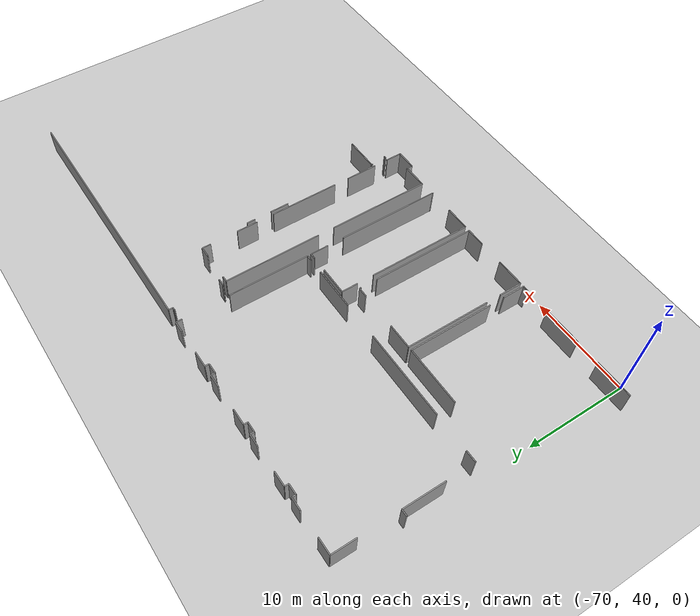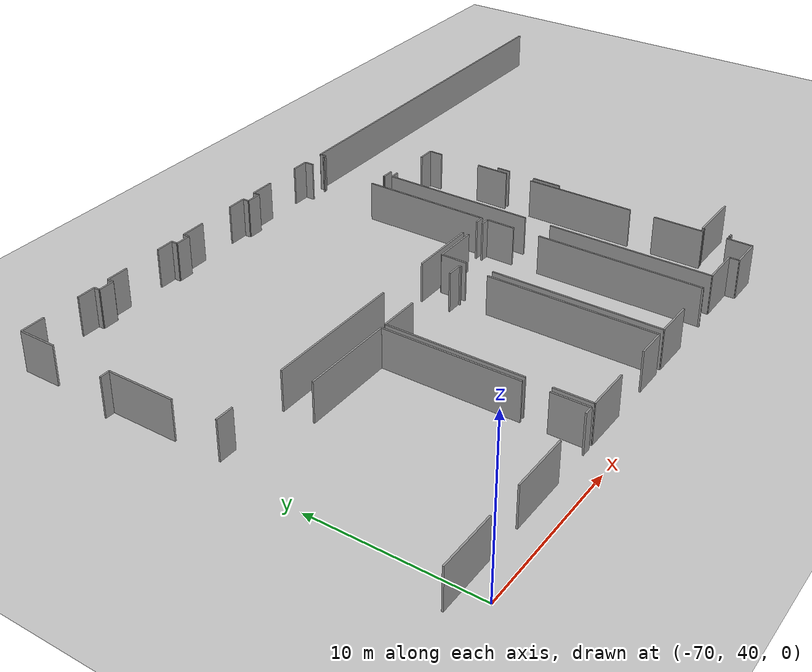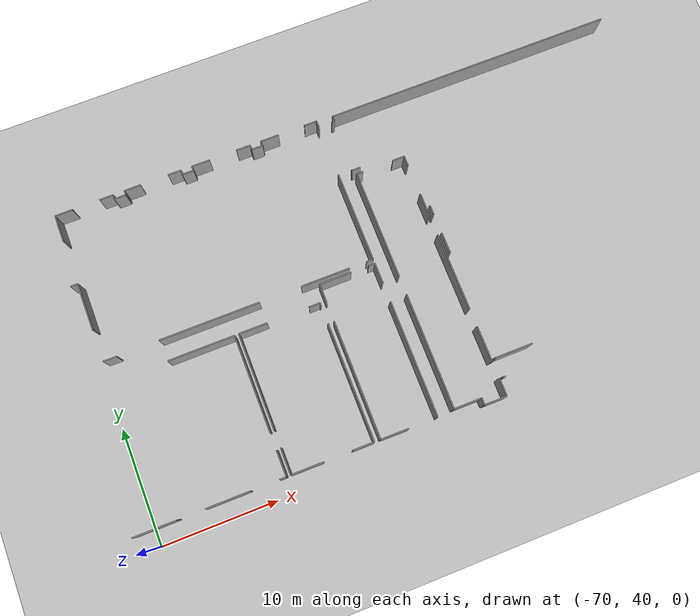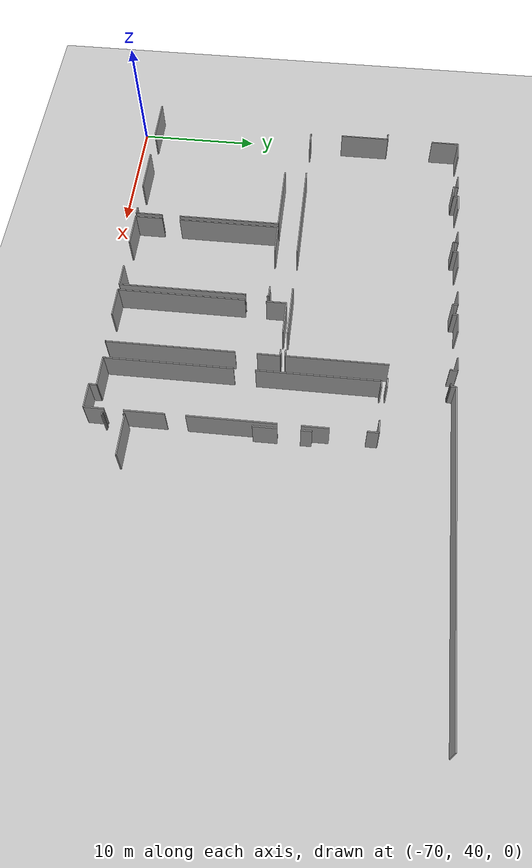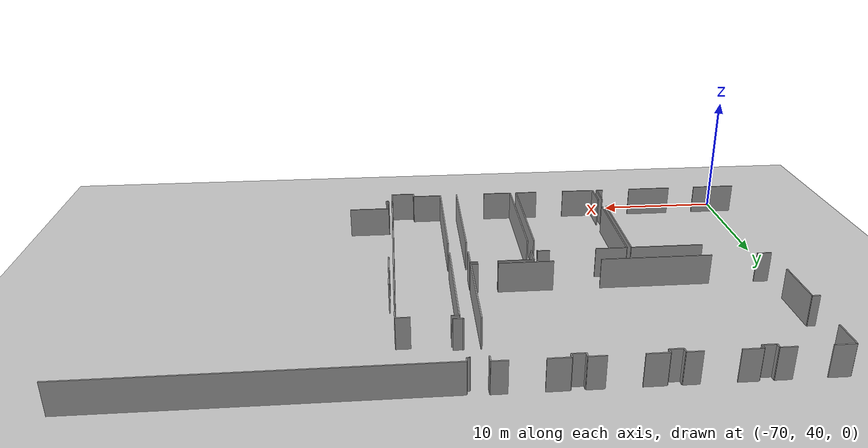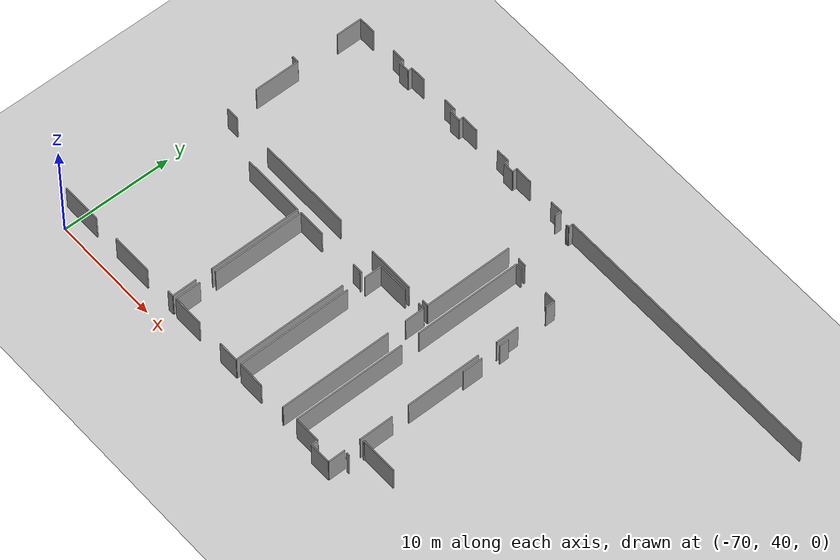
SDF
<sdf version="1.6">
 <world name="default">
  <model name="ground_plane">
   <static>1</static>
   <link name="link">
    <collision name="collision">
     <geometry><plane><normal>0 0 1</normal><size>100 100</size></plane></geometry>
     <surface><friction><ode><mu>100</mu><mu2>50</mu2></ode></friction></surface>
    </collision>
    <visual name="visual">
     <cast_shadows>0</cast_shadows>
     <geometry><plane><normal>0 0 1</normal><size>100 100</size></plane></geometry>
     <material>
      <script><uri>file://media/materials/scripts/gazebo.material</uri><name>Gazebo/Grey</name></script>
     </material>
    </visual>
   </link>
  </model>
  <model name="0510035519_A_40_1_102">
   <static>1</static>
   <link name="Wall_30">
    <collision name="Wall_30_Collision">
     <geometry><box><size>2.35582666158 0.1 2.5</size></box></geometry>
     <pose>1.17791333079 0 1.25 0 0 0</pose>
    </collision>
    <visual name="Wall_30_Visual">
     <pose>1.17791333079 0 1.25 0 0 0</pose>
     <geometry><box><size>2.35582666158 0.1 2.5</size></box></geometry>
     <material>
      <script><uri>file://media/materials/scripts/gazebo.material</uri><name>Gazebo/Grey</name></script>
      <ambient>1 1 1 1</ambient>
     </material>
    </visual>
    <pose>47.2703011819 -2.36294319482 0 0 0 1.57079632679</pose>
   </link>
   <link name="Wall_31">
    <collision name="Wall_31_Collision">
     <geometry><box><size>1.5511500826 0.1 2.5</size></box></geometry>
     <pose>0.775575041301 0 1.25 0 0 0</pose>
    </collision>
    <visual name="Wall_31_Visual">
     <pose>0.775575041301 0 1.25 0 0 0</pose>
     <geometry><box><size>1.5511500826 0.1 2.5</size></box></geometry>
     <material>
      <script><uri>file://media/materials/scripts/gazebo.material</uri><name>Gazebo/Grey</name></script>
      <ambient>1 1 1 1</ambient>
     </material>
    </visual>
    <pose>47.2703011819 -0.00711653323167 0 0 0 0.0</pose>
   </link>
   <link name="Wall_32">
    <collision name="Wall_32_Collision">
     <geometry><box><size>1.20396492566 0.1 2.5</size></box></geometry>
     <pose>0.601982462829 0 1.25 0 0 0</pose>
    </collision>
    <visual name="Wall_32_Visual">
     <pose>0.601982462829 0 1.25 0 0 0</pose>
     <geometry><box><size>1.20396492566 0.1 2.5</size></box></geometry>
     <material>
      <script><uri>file://media/materials/scripts/gazebo.material</uri><name>Gazebo/Grey</name></script>
      <ambient>1 1 1 1</ambient>
     </material>
    </visual>
    <pose>51.2197229635 -0.00711653323167 0 0 0 0.0</pose>
   </link>
   <link name="Wall_33">
    <collision name="Wall_33_Collision">
     <geometry><box><size>0.383530308807 0.1 2.5</size></box></geometry>
     <pose>0.191765154403 0 1.25 0 0 0</pose>
    </collision>
    <visual name="Wall_33_Visual">
     <pose>0.191765154403 0 1.25 0 0 0</pose>
     <geometry><box><size>0.383530308807 0.1 2.5</size></box></geometry>
     <material>
      <script><uri>file://media/materials/scripts/gazebo.material</uri><name>Gazebo/Grey</name></script>
      <ambient>1 1 1 1</ambient>
     </material>
    </visual>
    <pose>52.4236878892 -0.00711653323167 0 0 0 -1.57079632679</pose>
   </link>
   <link name="Wall_34">
    <collision name="Wall_34_Collision">
     <geometry><box><size>1.01359766171 0.1 2.5</size></box></geometry>
     <pose>0.506798830855 0 1.25 0 0 0</pose>
    </collision>
    <visual name="Wall_34_Visual">
     <pose>0.506798830855 0 1.25 0 0 0</pose>
     <geometry><box><size>1.01359766171 0.1 2.5</size></box></geometry>
     <material>
      <script><uri>file://media/materials/scripts/gazebo.material</uri><name>Gazebo/Grey</name></script>
      <ambient>1 1 1 1</ambient>
     </material>
    </visual>
    <pose>52.4236878892 -0.390646842038 0 0 0 0.0</pose>
   </link>
   <link name="Wall_35">
    <collision name="Wall_35_Collision">
     <geometry><box><size>0.390646842038 0.1 2.5</size></box></geometry>
     <pose>0.195323421019 0 1.25 0 0 0</pose>
    </collision>
    <visual name="Wall_35_Visual">
     <pose>0.195323421019 0 1.25 0 0 0</pose>
     <geometry><box><size>0.390646842038 0.1 2.5</size></box></geometry>
     <material>
      <script><uri>file://media/materials/scripts/gazebo.material</uri><name>Gazebo/Grey</name></script>
      <ambient>1 1 1 1</ambient>
     </material>
    </visual>
    <pose>53.4372855509 -0.390646842038 0 0 0 1.57079632679</pose>
   </link>
   <link name="Wall_36">
    <collision name="Wall_36_Collision">
     <geometry><box><size>1.44567289363 0.1 2.5</size></box></geometry>
     <pose>0.722836446817 0 1.25 0 0 0</pose>
    </collision>
    <visual name="Wall_36_Visual">
     <pose>0.722836446817 0 1.25 0 0 0</pose>
     <geometry><box><size>1.44567289363 0.1 2.5</size></box></geometry>
     <material>
      <script><uri>file://media/materials/scripts/gazebo.material</uri><name>Gazebo/Grey</name></script>
      <ambient>1 1 1 1</ambient>
     </material>
    </visual>
    <pose>53.4372855509 -0.0 0 0 0 0.0</pose>
   </link>
   <link name="Wall_37">
    <collision name="Wall_37_Collision">
     <geometry><box><size>1.169653069 0.1 2.5</size></box></geometry>
     <pose>0.584826534502 0 1.25 0 0 0</pose>
    </collision>
    <visual name="Wall_37_Visual">
     <pose>0.584826534502 0 1.25 0 0 0</pose>
     <geometry><box><size>1.169653069 0.1 2.5</size></box></geometry>
     <material>
      <script><uri>file://media/materials/scripts/gazebo.material</uri><name>Gazebo/Grey</name></script>
      <ambient>1 1 1 1</ambient>
     </material>
    </visual>
    <pose>57.3590036853 -0.0 0 0 0 0.0</pose>
   </link>
   <link name="Wall_38">
    <collision name="Wall_38_Collision">
     <geometry><box><size>0.404117422798 0.1 2.5</size></box></geometry>
     <pose>0.202058711399 0 1.25 0 0 0</pose>
    </collision>
    <visual name="Wall_38_Visual">
     <pose>0.202058711399 0 1.25 0 0 0</pose>
     <geometry><box><size>0.404117422798 0.1 2.5</size></box></geometry>
     <material>
      <script><uri>file://media/materials/scripts/gazebo.material</uri><name>Gazebo/Grey</name></script>
      <ambient>1 1 1 1</ambient>
     </material>
    </visual>
    <pose>58.5286567544 -0.0 0 0 0 -1.57079632679</pose>
   </link>
   <link name="Wall_39">
    <collision name="Wall_39_Collision">
     <geometry><box><size>0.989960604905 0.1 2.5</size></box></geometry>
     <pose>0.494980302453 0 1.25 0 0 0</pose>
    </collision>
    <visual name="Wall_39_Visual">
     <pose>0.494980302453 0 1.25 0 0 0</pose>
     <geometry><box><size>0.989960604905 0.1 2.5</size></box></geometry>
     <material>
      <script><uri>file://media/materials/scripts/gazebo.material</uri><name>Gazebo/Grey</name></script>
      <ambient>1 1 1 1</ambient>
     </material>
    </visual>
    <pose>58.5286567544 -0.404117422798 0 0 0 0.0</pose>
   </link>
   <link name="Wall_40">
    <collision name="Wall_40_Collision">
     <geometry><box><size>0.390392680137 0.1 2.5</size></box></geometry>
     <pose>0.195196340069 0 1.25 0 0 0</pose>
    </collision>
    <visual name="Wall_40_Visual">
     <pose>0.195196340069 0 1.25 0 0 0</pose>
     <geometry><box><size>0.390392680137 0.1 2.5</size></box></geometry>
     <material>
      <script><uri>file://media/materials/scripts/gazebo.material</uri><name>Gazebo/Grey</name></script>
      <ambient>1 1 1 1</ambient>
     </material>
    </visual>
    <pose>59.5186173593 -0.404117422798 0 0 0 1.57079632679</pose>
   </link>
   <link name="Wall_41">
    <collision name="Wall_41_Collision">
     <geometry><box><size>1.60426991994 0.1 2.5</size></box></geometry>
     <pose>0.80213495997 0 1.25 0 0 0</pose>
    </collision>
    <visual name="Wall_41_Visual">
     <pose>0.80213495997 0 1.25 0 0 0</pose>
     <geometry><box><size>1.60426991994 0.1 2.5</size></box></geometry>
     <material>
      <script><uri>file://media/materials/scripts/gazebo.material</uri><name>Gazebo/Grey</name></script>
      <ambient>1 1 1 1</ambient>
     </material>
    </visual>
    <pose>59.5186173593 -0.0137247426611 0 0 0 0.0</pose>
   </link>
   <link name="Wall_42">
    <collision name="Wall_42_Collision">
     <geometry><box><size>1.26369297242 0.1 2.5</size></box></geometry>
     <pose>0.631846486212 0 1.25 0 0 0</pose>
    </collision>
    <visual name="Wall_42_Visual">
     <pose>0.631846486212 0 1.25 0 0 0</pose>
     <geometry><box><size>1.26369297242 0.1 2.5</size></box></geometry>
     <material>
      <script><uri>file://media/materials/scripts/gazebo.material</uri><name>Gazebo/Grey</name></script>
      <ambient>1 1 1 1</ambient>
     </material>
    </visual>
    <pose>63.565637311 -0.0137247426611 0 0 0 0.0</pose>
   </link>
   <link name="Wall_43">
    <collision name="Wall_43_Collision">
     <geometry><box><size>0.404371584699 0.1 2.5</size></box></geometry>
     <pose>0.20218579235 0 1.25 0 0 0</pose>
    </collision>
    <visual name="Wall_43_Visual">
     <pose>0.20218579235 0 1.25 0 0 0</pose>
     <geometry><box><size>0.404371584699 0.1 2.5</size></box></geometry>
     <material>
      <script><uri>file://media/materials/scripts/gazebo.material</uri><name>Gazebo/Grey</name></script>
      <ambient>1 1 1 1</ambient>
     </material>
    </visual>
    <pose>64.8293302834 -0.0137247426611 0 0 0 -1.57079632679</pose>
   </link>
   <link name="Wall_44">
    <collision name="Wall_44_Collision">
     <geometry><box><size>0.988943957301 0.1 2.5</size></box></geometry>
     <pose>0.49447197865 0 1.25 0 0 0</pose>
    </collision>
    <visual name="Wall_44_Visual">
     <pose>0.49447197865 0 1.25 0 0 0</pose>
     <geometry><box><size>0.988943957301 0.1 2.5</size></box></geometry>
     <material>
      <script><uri>file://media/materials/scripts/gazebo.material</uri><name>Gazebo/Grey</name></script>
      <ambient>1 1 1 1</ambient>
     </material>
    </visual>
    <pose>64.8293302834 -0.418096327361 0 0 0 0.0</pose>
   </link>
   <link name="Wall_45">
    <collision name="Wall_45_Collision">
     <geometry><box><size>0.40665904181 0.1 2.5</size></box></geometry>
     <pose>0.203329520905 0 1.25 0 0 0</pose>
    </collision>
    <visual name="Wall_45_Visual">
     <pose>0.203329520905 0 1.25 0 0 0</pose>
     <geometry><box><size>0.40665904181 0.1 2.5</size></box></geometry>
     <material>
      <script><uri>file://media/materials/scripts/gazebo.material</uri><name>Gazebo/Grey</name></script>
      <ambient>1 1 1 1</ambient>
     </material>
    </visual>
    <pose>65.8182742407 -0.418096327361 0 0 0 1.57079632679</pose>
   </link>
   <link name="Wall_46">
    <collision name="Wall_46_Collision">
     <geometry><box><size>1.60782818655 0.1 2.5</size></box></geometry>
     <pose>0.803914093277 0 1.25 0 0 0</pose>
    </collision>
    <visual name="Wall_46_Visual">
     <pose>0.803914093277 0 1.25 0 0 0</pose>
     <geometry><box><size>1.60782818655 0.1 2.5</size></box></geometry>
     <material>
      <script><uri>file://media/materials/scripts/gazebo.material</uri><name>Gazebo/Grey</name></script>
      <ambient>1 1 1 1</ambient>
     </material>
    </visual>
    <pose>65.8182742407 -0.0114372855509 0 0 0 0.0</pose>
   </link>
   <link name="Wall_47">
    <collision name="Wall_47_Collision">
     <geometry><box><size>1.13178294574 0.1 2.5</size></box></geometry>
     <pose>0.565891472868 0 1.25 0 0 0</pose>
    </collision>
    <visual name="Wall_47_Visual">
     <pose>0.565891472868 0 1.25 0 0 0</pose>
     <geometry><box><size>1.13178294574 0.1 2.5</size></box></geometry>
     <material>
      <script><uri>file://media/materials/scripts/gazebo.material</uri><name>Gazebo/Grey</name></script>
      <ambient>1 1 1 1</ambient>
     </material>
    </visual>
    <pose>69.8187825645 -0.0114372855509 0 0 0 0.0</pose>
   </link>
   <link name="Wall_48">
    <collision name="Wall_48_Collision">
     <geometry><box><size>0.599313762867 0.1 2.5</size></box></geometry>
     <pose>0.299656881433 0 1.25 0 0 0</pose>
    </collision>
    <visual name="Wall_48_Visual">
     <pose>0.299656881433 0 1.25 0 0 0</pose>
     <geometry><box><size>0.599313762867 0.1 2.5</size></box></geometry>
     <material>
      <script><uri>file://media/materials/scripts/gazebo.material</uri><name>Gazebo/Grey</name></script>
      <ambient>1 1 1 1</ambient>
     </material>
    </visual>
    <pose>70.9505655102 -0.0114372855509 0 0 0 -1.57079632679</pose>
   </link>
   <link name="Wall_49">
    <collision name="Wall_49_Collision">
     <geometry><box><size>8.01779133308 0.1 2.5</size></box></geometry>
     <pose>4.00889566654 0 1.25 0 0 0</pose>
    </collision>
    <visual name="Wall_49_Visual">
     <pose>4.00889566654 0 1.25 0 0 0</pose>
     <geometry><box><size>8.01779133308 0.1 2.5</size></box></geometry>
     <material>
      <script><uri>file://media/materials/scripts/gazebo.material</uri><name>Gazebo/Grey</name></script>
      <ambient>1 1 1 1</ambient>
     </material>
    </visual>
    <pose>70.9505655102 -5.23446435379 0 0 0 -1.57079632679</pose>
   </link>
   <link name="Wall_50">
    <collision name="Wall_50_Collision">
     <geometry><box><size>0.580251620282 0.1 2.5</size></box></geometry>
     <pose>0.290125810141 0 1.25 0 0 0</pose>
    </collision>
    <visual name="Wall_50_Visual">
     <pose>0.290125810141 0 1.25 0 0 0</pose>
     <geometry><box><size>0.580251620282 0.1 2.5</size></box></geometry>
     <material>
      <script><uri>file://media/materials/scripts/gazebo.material</uri><name>Gazebo/Grey</name></script>
      <ambient>1 1 1 1</ambient>
     </material>
    </visual>
    <pose>70.9505655102 -13.2522556869 0 0 0 3.14159265359</pose>
   </link>
   <link name="Wall_51">
    <collision name="Wall_51_Collision">
     <geometry><box><size>4.30194433854 0.1 2.5</size></box></geometry>
     <pose>2.15097216927 0 1.25 0 0 0</pose>
    </collision>
    <visual name="Wall_51_Visual">
     <pose>2.15097216927 0 1.25 0 0 0</pose>
     <geometry><box><size>4.30194433854 0.1 2.5</size></box></geometry>
     <material>
      <script><uri>file://media/materials/scripts/gazebo.material</uri><name>Gazebo/Grey</name></script>
      <ambient>1 1 1 1</ambient>
     </material>
    </visual>
    <pose>68.8313635786 -13.2522556869 0 0 0 3.14159265359</pose>
   </link>
   <link name="Wall_52">
    <collision name="Wall_52_Collision">
     <geometry><box><size>8.76172321769 0.1 2.5</size></box></geometry>
     <pose>4.38086160884 0 1.25 0 0 0</pose>
    </collision>
    <visual name="Wall_52_Visual">
     <pose>4.38086160884 0 1.25 0 0 0</pose>
     <geometry><box><size>8.76172321769 0.1 2.5</size></box></geometry>
     <material>
      <script><uri>file://media/materials/scripts/gazebo.material</uri><name>Gazebo/Grey</name></script>
      <ambient>1 1 1 1</ambient>
     </material>
    </visual>
    <pose>60.8224679121 -13.2522556869 0 0 0 3.14159265359</pose>
   </link>
   <link name="Wall_53">
    <collision name="Wall_53_Collision">
     <geometry><box><size>1.1467784979 0.1 2.5</size></box></geometry>
     <pose>0.573389248952 0 1.25 0 0 0</pose>
    </collision>
    <visual name="Wall_53_Visual">
     <pose>0.573389248952 0 1.25 0 0 0</pose>
     <geometry><box><size>1.1467784979 0.1 2.5</size></box></geometry>
     <material>
      <script><uri>file://media/materials/scripts/gazebo.material</uri><name>Gazebo/Grey</name></script>
      <ambient>1 1 1 1</ambient>
     </material>
    </visual>
    <pose>48.4107256322 -13.2522556869 0 0 0 3.14159265359</pose>
   </link>
   <link name="Wall_59">
    <collision name="Wall_59_Collision">
     <geometry><box><size>4.13851823612 0.1 2.5</size></box></geometry>
     <pose>2.06925911806 0 1.25 0 0 0</pose>
    </collision>
    <visual name="Wall_59_Visual">
     <pose>2.06925911806 0 1.25 0 0 0</pose>
     <geometry><box><size>4.13851823612 0.1 2.5</size></box></geometry>
     <material>
      <script><uri>file://media/materials/scripts/gazebo.material</uri><name>Gazebo/Grey</name></script>
      <ambient>1 1 1 1</ambient>
     </material>
    </visual>
    <pose>47.2639471343 -10.452408184 0 0 0 1.57079632679</pose>
   </link>
   <link name="Wall_60">
    <collision name="Wall_60_Collision">
     <geometry><box><size>0.612784343627 0.1 2.5</size></box></geometry>
     <pose>0.306392171813 0 1.25 0 0 0</pose>
    </collision>
    <visual name="Wall_60_Visual">
     <pose>0.306392171813 0 1.25 0 0 0</pose>
     <geometry><box><size>0.612784343627 0.1 2.5</size></box></geometry>
     <material>
      <script><uri>file://media/materials/scripts/gazebo.material</uri><name>Gazebo/Grey</name></script>
      <ambient>1 1 1 1</ambient>
     </material>
    </visual>
    <pose>47.2639471343 -6.3138899479 0 0 0 3.14159265359</pose>
   </link>
   <link name="Wall_103">
    <collision name="Wall_103_Collision">
     <geometry><box><size>5.79997458381 0.1 2.5</size></box></geometry>
     <pose>2.8999872919 0 1.25 0 0 0</pose>
    </collision>
    <visual name="Wall_103_Visual">
     <pose>2.8999872919 0 1.25 0 0 0</pose>
     <geometry><box><size>5.79997458381 0.1 2.5</size></box></geometry>
     <material>
      <script><uri>file://media/materials/scripts/gazebo.material</uri><name>Gazebo/Grey</name></script>
      <ambient>1 1 1 1</ambient>
     </material>
    </visual>
    <pose>52.16444275 -15.1200914983 0 0 0 0.0</pose>
   </link>
   <link name="Wall_104">
    <collision name="Wall_104_Collision">
     <geometry><box><size>8.39496759436 0.1 2.5</size></box></geometry>
     <pose>4.19748379718 0 1.25 0 0 0</pose>
    </collision>
    <visual name="Wall_104_Visual">
     <pose>4.19748379718 0 1.25 0 0 0</pose>
     <geometry><box><size>8.39496759436 0.1 2.5</size></box></geometry>
     <material>
      <script><uri>file://media/materials/scripts/gazebo.material</uri><name>Gazebo/Grey</name></script>
      <ambient>1 1 1 1</ambient>
     </material>
    </visual>
    <pose>57.9644173338 -15.1200914983 0 0 0 -1.57079632679</pose>
   </link>
   <link name="Wall_105">
    <collision name="Wall_105_Collision">
     <geometry><box><size>2.23052484433 0.1 2.5</size></box></geometry>
     <pose>1.11526242216 0 1.25 0 0 0</pose>
    </collision>
    <visual name="Wall_105_Visual">
     <pose>1.11526242216 0 1.25 0 0 0</pose>
     <geometry><box><size>2.23052484433 0.1 2.5</size></box></geometry>
     <material>
      <script><uri>file://media/materials/scripts/gazebo.material</uri><name>Gazebo/Grey</name></script>
      <ambient>1 1 1 1</ambient>
     </material>
    </visual>
    <pose>57.9644173338 -25.0313889948 0 0 0 -1.57079632679</pose>
   </link>
   <link name="Wall_106">
    <collision name="Wall_106_Collision">
     <geometry><box><size>0.562968611005 0.1 2.5</size></box></geometry>
     <pose>0.281484305503 0 1.25 0 0 0</pose>
    </collision>
    <visual name="Wall_106_Visual">
     <pose>0.281484305503 0 1.25 0 0 0</pose>
     <geometry><box><size>0.562968611005 0.1 2.5</size></box></geometry>
     <material>
      <script><uri>file://media/materials/scripts/gazebo.material</uri><name>Gazebo/Grey</name></script>
      <ambient>1 1 1 1</ambient>
     </material>
    </visual>
    <pose>57.9644173338 -27.2619138391 0 0 0 3.14159265359</pose>
   </link>
   <link name="Wall_107">
    <collision name="Wall_107_Collision">
     <geometry><box><size>3.76896683187 0.1 2.5</size></box></geometry>
     <pose>1.88448341594 0 1.25 0 0 0</pose>
    </collision>
    <visual name="Wall_107_Visual">
     <pose>1.88448341594 0 1.25 0 0 0</pose>
     <geometry><box><size>3.76896683187 0.1 2.5</size></box></geometry>
     <material>
      <script><uri>file://media/materials/scripts/gazebo.material</uri><name>Gazebo/Grey</name></script>
      <ambient>1 1 1 1</ambient>
     </material>
    </visual>
    <pose>54.9180327869 -27.2619138391 0 0 0 3.14159265359</pose>
   </link>
   <link name="Wall_108">
    <collision name="Wall_108_Collision">
     <geometry><box><size>3.69220993773 0.1 2.5</size></box></geometry>
     <pose>1.84610496887 0 1.25 0 0 0</pose>
    </collision>
    <visual name="Wall_108_Visual">
     <pose>1.84610496887 0 1.25 0 0 0</pose>
     <geometry><box><size>3.69220993773 0.1 2.5</size></box></geometry>
     <material>
      <script><uri>file://media/materials/scripts/gazebo.material</uri><name>Gazebo/Grey</name></script>
      <ambient>1 1 1 1</ambient>
     </material>
    </visual>
    <pose>48.7647731605 -27.2619138391 0 0 0 3.14159265359</pose>
   </link>
   <link name="Wall_112">
    <collision name="Wall_112_Collision">
     <geometry><box><size>2.28542381497 0.1 2.5</size></box></geometry>
     <pose>1.14271190749 0 1.25 0 0 0</pose>
    </collision>
    <visual name="Wall_112_Visual">
     <pose>1.14271190749 0 1.25 0 0 0</pose>
     <geometry><box><size>2.28542381497 0.1 2.5</size></box></geometry>
     <material>
      <script><uri>file://media/materials/scripts/gazebo.material</uri><name>Gazebo/Grey</name></script>
      <ambient>1 1 1 1</ambient>
     </material>
    </visual>
    <pose>58.3352395476 -27.2509848774 0 0 0 1.57079632679</pose>
   </link>
   <link name="Wall_113">
    <collision name="Wall_113_Collision">
     <geometry><box><size>8.3601474139 0.1 2.5</size></box></geometry>
     <pose>4.18007370695 0 1.25 0 0 0</pose>
    </collision>
    <visual name="Wall_113_Visual">
     <pose>4.18007370695 0 1.25 0 0 0</pose>
     <geometry><box><size>8.3601474139 0.1 2.5</size></box></geometry>
     <material>
      <script><uri>file://media/materials/scripts/gazebo.material</uri><name>Gazebo/Grey</name></script>
      <ambient>1 1 1 1</ambient>
     </material>
    </visual>
    <pose>58.3352395476 -23.4738848647 0 0 0 1.57079632679</pose>
   </link>
   <link name="Wall_114">
    <collision name="Wall_114_Collision">
     <geometry><box><size>2.49815732622 0.1 2.5</size></box></geometry>
     <pose>1.24907866311 0 1.25 0 0 0</pose>
    </collision>
    <visual name="Wall_114_Visual">
     <pose>1.24907866311 0 1.25 0 0 0</pose>
     <geometry><box><size>2.49815732622 0.1 2.5</size></box></geometry>
     <material>
      <script><uri>file://media/materials/scripts/gazebo.material</uri><name>Gazebo/Grey</name></script>
      <ambient>1 1 1 1</ambient>
     </material>
    </visual>
    <pose>58.3352395476 -15.1137374508 0 0 0 0.0</pose>
   </link>
   <link name="Wall_115">
    <collision name="Wall_115_Collision">
     <geometry><box><size>0.953615453044 0.1 2.5</size></box></geometry>
     <pose>0.476807726522 0 1.25 0 0 0</pose>
    </collision>
    <visual name="Wall_115_Visual">
     <pose>0.476807726522 0 1.25 0 0 0</pose>
     <geometry><box><size>0.953615453044 0.1 2.5</size></box></geometry>
     <material>
      <script><uri>file://media/materials/scripts/gazebo.material</uri><name>Gazebo/Grey</name></script>
      <ambient>1 1 1 1</ambient>
     </material>
    </visual>
    <pose>64.5228110306 -15.1137374508 0 0 0 0.0</pose>
   </link>
   <link name="Wall_116">
    <collision name="Wall_116_Collision">
     <geometry><box><size>0.149193035964 0.1 2.5</size></box></geometry>
     <pose>0.074596517982 0 1.25 0 0 0</pose>
    </collision>
    <visual name="Wall_116_Visual">
     <pose>0.074596517982 0 1.25 0 0 0</pose>
     <geometry><box><size>0.149193035964 0.1 2.5</size></box></geometry>
     <material>
      <script><uri>file://media/materials/scripts/gazebo.material</uri><name>Gazebo/Grey</name></script>
      <ambient>1 1 1 1</ambient>
     </material>
    </visual>
    <pose>65.4764264837 -15.1137374508 0 0 0 -1.57079632679</pose>
   </link>
   <link name="Wall_117">
    <collision name="Wall_117_Collision">
     <geometry><box><size>10.2940653196 0.1 2.5</size></box></geometry>
     <pose>5.1470326598 0 1.25 0 0 0</pose>
    </collision>
    <visual name="Wall_117_Visual">
     <pose>5.1470326598 0 1.25 0 0 0</pose>
     <geometry><box><size>10.2940653196 0.1 2.5</size></box></geometry>
     <material>
      <script><uri>file://media/materials/scripts/gazebo.material</uri><name>Gazebo/Grey</name></script>
      <ambient>1 1 1 1</ambient>
     </material>
    </visual>
    <pose>65.4764264837 -16.964036091 0 0 0 -1.57079632679</pose>
   </link>
   <link name="Wall_118">
    <collision name="Wall_118_Collision">
     <geometry><box><size>1.88181471597 0.1 2.5</size></box></geometry>
     <pose>0.940907357987 0 1.25 0 0 0</pose>
    </collision>
    <visual name="Wall_118_Visual">
     <pose>0.940907357987 0 1.25 0 0 0</pose>
     <geometry><box><size>1.88181471597 0.1 2.5</size></box></geometry>
     <material>
      <script><uri>file://media/materials/scripts/gazebo.material</uri><name>Gazebo/Grey</name></script>
      <ambient>1 1 1 1</ambient>
     </material>
    </visual>
    <pose>65.4764264837 -27.2581014106 0 0 0 3.14159265359</pose>
   </link>
   <link name="Wall_119">
    <collision name="Wall_119_Collision">
     <geometry><box><size>2.81612285653 0.1 2.5</size></box></geometry>
     <pose>1.40806142826 0 1.25 0 0 0</pose>
    </collision>
    <visual name="Wall_119_Visual">
     <pose>1.40806142826 0 1.25 0 0 0</pose>
     <geometry><box><size>2.81612285653 0.1 2.5</size></box></geometry>
     <material>
      <script><uri>file://media/materials/scripts/gazebo.material</uri><name>Gazebo/Grey</name></script>
      <ambient>1 1 1 1</ambient>
     </material>
    </visual>
    <pose>61.1513534121 -27.2581014106 0 0 0 3.13906558316</pose>
   </link>
   <link name="Wall_120">
    <collision name="Wall_120_Collision">
     <geometry><box><size>10.303215148 0.1 2.5</size></box></geometry>
     <pose>5.15160757402 0 1.25 0 0 0</pose>
    </collision>
    <visual name="Wall_120_Visual">
     <pose>5.15160757402 0 1.25 0 0 0</pose>
     <geometry><box><size>10.303215148 0.1 2.5</size></box></geometry>
     <material>
      <script><uri>file://media/materials/scripts/gazebo.material</uri><name>Gazebo/Grey</name></script>
      <ambient>1 1 1 1</ambient>
     </material>
    </visual>
    <pose>66.0083873427 -27.2606430296 0 0 0 1.57079632679</pose>
   </link>
   <link name="Wall_121">
    <collision name="Wall_121_Collision">
     <geometry><box><size>1.62231541492 0.1 2.5</size></box></geometry>
     <pose>0.81115770746 0 1.25 0 0 0</pose>
    </collision>
    <visual name="Wall_121_Visual">
     <pose>0.81115770746 0 1.25 0 0 0</pose>
     <geometry><box><size>1.62231541492 0.1 2.5</size></box></geometry>
     <material>
      <script><uri>file://media/materials/scripts/gazebo.material</uri><name>Gazebo/Grey</name></script>
      <ambient>1 1 1 1</ambient>
     </material>
    </visual>
    <pose>66.0083873427 -15.2547973059 0 0 0 1.57079632679</pose>
   </link>
   <link name="Wall_122">
    <collision name="Wall_122_Collision">
     <geometry><box><size>2.82094294065 0.1 2.5</size></box></geometry>
     <pose>1.41047147033 0 1.25 0 0 0</pose>
    </collision>
    <visual name="Wall_122_Visual">
     <pose>1.41047147033 0 1.25 0 0 0</pose>
     <geometry><box><size>2.82094294065 0.1 2.5</size></box></geometry>
     <material>
      <script><uri>file://media/materials/scripts/gazebo.material</uri><name>Gazebo/Grey</name></script>
      <ambient>1 1 1 1</ambient>
     </material>
    </visual>
    <pose>66.0083873427 -13.632481891 0 0 0 0.0</pose>
   </link>
   <link name="Wall_123">
    <collision name="Wall_123_Collision">
     <geometry><box><size>0.573389248952 0.1 2.5</size></box></geometry>
     <pose>0.286694624476 0 1.25 0 0 0</pose>
    </collision>
    <visual name="Wall_123_Visual">
     <pose>0.286694624476 0 1.25 0 0 0</pose>
     <geometry><box><size>0.573389248952 0.1 2.5</size></box></geometry>
     <material>
      <script><uri>file://media/materials/scripts/gazebo.material</uri><name>Gazebo/Grey</name></script>
      <ambient>1 1 1 1</ambient>
     </material>
    </visual>
    <pose>70.3868344135 -13.632481891 0 0 0 0.0</pose>
   </link>
   <link name="Wall_124">
    <collision name="Wall_124_Collision">
     <geometry><box><size>1.78675816495 0.1 2.5</size></box></geometry>
     <pose>0.893379082476 0 1.25 0 0 0</pose>
    </collision>
    <visual name="Wall_124_Visual">
     <pose>0.893379082476 0 1.25 0 0 0</pose>
     <geometry><box><size>1.78675816495 0.1 2.5</size></box></geometry>
     <material>
      <script><uri>file://media/materials/scripts/gazebo.material</uri><name>Gazebo/Grey</name></script>
      <ambient>1 1 1 1</ambient>
     </material>
    </visual>
    <pose>70.9602236625 -13.632481891 0 0 0 -1.57079632679</pose>
   </link>
   <link name="Wall_125">
    <collision name="Wall_125_Collision">
     <geometry><box><size>10.1639344262 0.1 2.5</size></box></geometry>
     <pose>5.08196721311 0 1.25 0 0 0</pose>
    </collision>
    <visual name="Wall_125_Visual">
     <pose>5.08196721311 0 1.25 0 0 0</pose>
     <geometry><box><size>10.1639344262 0.1 2.5</size></box></geometry>
     <material>
      <script><uri>file://media/materials/scripts/gazebo.material</uri><name>Gazebo/Grey</name></script>
      <ambient>1 1 1 1</ambient>
     </material>
    </visual>
    <pose>70.9602236625 -17.1129749651 0 0 0 -1.57079632679</pose>
   </link>
   <link name="Wall_126">
    <collision name="Wall_126_Collision">
     <geometry><box><size>0.0574405896556 0.1 2.5</size></box></geometry>
     <pose>0.0287202948278 0 1.25 0 0 0</pose>
    </collision>
    <visual name="Wall_126_Visual">
     <pose>0.0287202948278 0 1.25 0 0 0</pose>
     <geometry><box><size>0.0574405896556 0.1 2.5</size></box></geometry>
     <material>
      <script><uri>file://media/materials/scripts/gazebo.material</uri><name>Gazebo/Grey</name></script>
      <ambient>1 1 1 1</ambient>
     </material>
    </visual>
    <pose>70.9602236625 -27.2769093913 0 0 0 3.14159265359</pose>
   </link>
   <link name="Wall_127">
    <collision name="Wall_127_Collision">
     <geometry><box><size>2.42933390987 0.1 2.5</size></box></geometry>
     <pose>1.21466695493 0 1.25 0 0 0</pose>
    </collision>
    <visual name="Wall_127_Visual">
     <pose>1.21466695493 0 1.25 0 0 0</pose>
     <geometry><box><size>2.42933390987 0.1 2.5</size></box></geometry>
     <material>
      <script><uri>file://media/materials/scripts/gazebo.material</uri><name>Gazebo/Grey</name></script>
      <ambient>1 1 1 1</ambient>
     </material>
    </visual>
    <pose>68.4376667937 -27.2769093913 0 0 0 3.13489679216</pose>
   </link>
   <link name="Wall_175">
    <collision name="Wall_175_Collision">
     <geometry><box><size>25.6721311475 0.1 2.5</size></box></geometry>
     <pose>12.8360655738 0 1.25 0 0 0</pose>
    </collision>
    <visual name="Wall_175_Visual">
     <pose>12.8360655738 0 1.25 0 0 0</pose>
     <geometry><box><size>25.6721311475 0.1 2.5</size></box></geometry>
     <material>
      <script><uri>file://media/materials/scripts/gazebo.material</uri><name>Gazebo/Grey</name></script>
      <ambient>1 1 1 1</ambient>
     </material>
    </visual>
    <pose>72.4221629178 -0.10776464608 0 0 0 0.0</pose>
   </link>
   <link name="Wall_180">
    <collision name="Wall_180_Collision">
     <geometry><box><size>0.733002922862 0.1 2.5</size></box></geometry>
     <pose>0.366501461431 0 1.25 0 0 0</pose>
    </collision>
    <visual name="Wall_180_Visual">
     <pose>0.366501461431 0 1.25 0 0 0</pose>
     <geometry><box><size>0.733002922862 0.1 2.5</size></box></geometry>
     <material>
      <script><uri>file://media/materials/scripts/gazebo.material</uri><name>Gazebo/Grey</name></script>
      <ambient>1 1 1 1</ambient>
     </material>
    </visual>
    <pose>72.9243868344 -5.31960859067 0 0 0 3.14159265359</pose>
   </link>
   <link name="Wall_181">
    <collision name="Wall_181_Collision">
     <geometry><box><size>0.0742152751303 0.1 2.5</size></box></geometry>
     <pose>0.0371076375651 0 1.25 0 0 0</pose>
    </collision>
    <visual name="Wall_181_Visual">
     <pose>0.0371076375651 0 1.25 0 0 0</pose>
     <geometry><box><size>0.0742152751303 0.1 2.5</size></box></geometry>
     <material>
      <script><uri>file://media/materials/scripts/gazebo.material</uri><name>Gazebo/Grey</name></script>
      <ambient>1 1 1 1</ambient>
     </material>
    </visual>
    <pose>72.1913839116 -5.31960859067 0 0 0 1.57079632679</pose>
   </link>
   <link name="Wall_182">
    <collision name="Wall_182_Collision">
     <geometry><box><size>0.0770110560427 0.1 2.5</size></box></geometry>
     <pose>0.0385055280213 0 1.25 0 0 0</pose>
    </collision>
    <visual name="Wall_182_Visual">
     <pose>0.0385055280213 0 1.25 0 0 0</pose>
     <geometry><box><size>0.0770110560427 0.1 2.5</size></box></geometry>
     <material>
      <script><uri>file://media/materials/scripts/gazebo.material</uri><name>Gazebo/Grey</name></script>
      <ambient>1 1 1 1</ambient>
     </material>
    </visual>
    <pose>72.1913839116 -0.593976362943 0 0 0 1.57079632679</pose>
   </link>
   <link name="Wall_183">
    <collision name="Wall_183_Collision">
     <geometry><box><size>0.219595882577 0.1 2.5</size></box></geometry>
     <pose>0.109797941289 0 1.25 0 0 0</pose>
    </collision>
    <visual name="Wall_183_Visual">
     <pose>0.109797941289 0 1.25 0 0 0</pose>
     <geometry><box><size>0.219595882577 0.1 2.5</size></box></geometry>
     <material>
      <script><uri>file://media/materials/scripts/gazebo.material</uri><name>Gazebo/Grey</name></script>
      <ambient>1 1 1 1</ambient>
     </material>
    </visual>
    <pose>72.1913839116 -0.5169653069 0 0 0 0.0</pose>
   </link>
   <link name="Wall_184">
    <collision name="Wall_184_Collision">
     <geometry><box><size>0.409353445168 0.1 2.5</size></box></geometry>
     <pose>0.204676722584 0 1.25 0 0 0</pose>
    </collision>
    <visual name="Wall_184_Visual">
     <pose>0.204676722584 0 1.25 0 0 0</pose>
     <geometry><box><size>0.409353445168 0.1 2.5</size></box></geometry>
     <material>
      <script><uri>file://media/materials/scripts/gazebo.material</uri><name>Gazebo/Grey</name></script>
      <ambient>1 1 1 1</ambient>
     </material>
    </visual>
    <pose>72.4109797941 -0.5169653069 0 0 0 1.54347393512</pose>
   </link>
   <link name="Wall_244">
    <collision name="Wall_244_Collision">
     <geometry><box><size>1.85360274495 0.1 2.5</size></box></geometry>
     <pose>0.926801372474 0 1.25 0 0 0</pose>
    </collision>
    <visual name="Wall_244_Visual">
     <pose>0.926801372474 0 1.25 0 0 0</pose>
     <geometry><box><size>1.85360274495 0.1 2.5</size></box></geometry>
     <material>
      <script><uri>file://media/materials/scripts/gazebo.material</uri><name>Gazebo/Grey</name></script>
      <ambient>1 1 1 1</ambient>
     </material>
    </visual>
    <pose>77.1899860211 -15.0657008514 0 0 0 1.57079632679</pose>
   </link>
   <link name="Wall_245">
    <collision name="Wall_245_Collision">
     <geometry><box><size>0.850425721184 0.1 2.5</size></box></geometry>
     <pose>0.425212860592 0 1.25 0 0 0</pose>
    </collision>
    <visual name="Wall_245_Visual">
     <pose>0.425212860592 0 1.25 0 0 0</pose>
     <geometry><box><size>0.850425721184 0.1 2.5</size></box></geometry>
     <material>
      <script><uri>file://media/materials/scripts/gazebo.material</uri><name>Gazebo/Grey</name></script>
      <ambient>1 1 1 1</ambient>
     </material>
    </visual>
    <pose>77.1899860211 -11.4825263693 0 0 0 1.57079632679</pose>
   </link>
   <link name="Wall_258">
    <collision name="Wall_258_Collision">
     <geometry><box><size>0.130130893379 0.1 2.5</size></box></geometry>
     <pose>0.0650654466895 0 1.25 0 0 0</pose>
    </collision>
    <visual name="Wall_258_Visual">
     <pose>0.0650654466895 0 1.25 0 0 0</pose>
     <geometry><box><size>0.130130893379 0.1 2.5</size></box></geometry>
     <material>
      <script><uri>file://media/materials/scripts/gazebo.material</uri><name>Gazebo/Grey</name></script>
      <ambient>1 1 1 1</ambient>
     </material>
    </visual>
    <pose>77.1327995933 -24.5639852586 0 0 0 -1.57079632679</pose>
   </link>
   <link name="Wall_259">
    <collision name="Wall_259_Collision">
     <geometry><box><size>0.0765027322404 0.1 2.5</size></box></geometry>
     <pose>0.0382513661202 0 1.25 0 0 0</pose>
    </collision>
    <visual name="Wall_259_Visual">
     <pose>0.0382513661202 0 1.25 0 0 0</pose>
     <geometry><box><size>0.0765027322404 0.1 2.5</size></box></geometry>
     <material>
      <script><uri>file://media/materials/scripts/gazebo.material</uri><name>Gazebo/Grey</name></script>
      <ambient>1 1 1 1</ambient>
     </material>
    </visual>
    <pose>77.1327995933 -26.1794383022 0 0 0 -1.57079632679</pose>
   </link>
   <link name="Wall_260">
    <collision name="Wall_260_Collision">
     <geometry><box><size>0.23586224425 0.1 2.5</size></box></geometry>
     <pose>0.117931122125 0 1.25 0 0 0</pose>
    </collision>
    <visual name="Wall_260_Visual">
     <pose>0.117931122125 0 1.25 0 0 0</pose>
     <geometry><box><size>0.23586224425 0.1 2.5</size></box></geometry>
     <material>
      <script><uri>file://media/materials/scripts/gazebo.material</uri><name>Gazebo/Grey</name></script>
      <ambient>1 1 1 1</ambient>
     </material>
    </visual>
    <pose>77.1327995933 -26.2559410344 0 0 0 0.0</pose>
   </link>
   <link name="Wall_274">
    <collision name="Wall_274_Collision">
     <geometry><box><size>10.1209810649 0.1 2.5</size></box></geometry>
     <pose>5.06049053247 0 1.25 0 0 0</pose>
    </collision>
    <visual name="Wall_274_Visual">
     <pose>5.06049053247 0 1.25 0 0 0</pose>
     <geometry><box><size>10.1209810649 0.1 2.5</size></box></geometry>
     <material>
      <script><uri>file://media/materials/scripts/gazebo.material</uri><name>Gazebo/Grey</name></script>
      <ambient>1 1 1 1</ambient>
     </material>
    </visual>
    <pose>72.4330918795 -27.1630448596 0 0 0 1.57079632679</pose>
   </link>
   <link name="Wall_275">
    <collision name="Wall_275_Collision">
     <geometry><box><size>9.62358622442 0.1 2.5</size></box></geometry>
     <pose>4.81179311221 0 1.25 0 0 0</pose>
    </collision>
    <visual name="Wall_275_Visual">
     <pose>4.81179311221 0 1.25 0 0 0</pose>
     <geometry><box><size>9.62358622442 0.1 2.5</size></box></geometry>
     <material>
      <script><uri>file://media/materials/scripts/gazebo.material</uri><name>Gazebo/Grey</name></script>
      <ambient>1 1 1 1</ambient>
     </material>
    </visual>
    <pose>72.4330918795 -15.3709492947 0 0 0 1.57079632679</pose>
   </link>
   <link name="Wall_276">
    <collision name="Wall_276_Collision">
     <geometry><box><size>0.571355953743 0.1 2.5</size></box></geometry>
     <pose>0.285677976871 0 1.25 0 0 0</pose>
    </collision>
    <visual name="Wall_276_Visual">
     <pose>0.285677976871 0 1.25 0 0 0</pose>
     <geometry><box><size>0.571355953743 0.1 2.5</size></box></geometry>
     <material>
      <script><uri>file://media/materials/scripts/gazebo.material</uri><name>Gazebo/Grey</name></script>
      <ambient>1 1 1 1</ambient>
     </material>
    </visual>
    <pose>72.4330918795 -5.74736307028 0 0 0 0.0</pose>
   </link>
   <link name="Wall_277">
    <collision name="Wall_277_Collision">
     <geometry><box><size>1.04892616597 0.1 2.5</size></box></geometry>
     <pose>0.524463082984 0 1.25 0 0 0</pose>
    </collision>
    <visual name="Wall_277_Visual">
     <pose>0.524463082984 0 1.25 0 0 0</pose>
     <geometry><box><size>1.04892616597 0.1 2.5</size></box></geometry>
     <material>
      <script><uri>file://media/materials/scripts/gazebo.material</uri><name>Gazebo/Grey</name></script>
      <ambient>1 1 1 1</ambient>
     </material>
    </visual>
    <pose>75.7689668319 -5.74736307028 0 0 0 0.0</pose>
   </link>
   <link name="Wall_278">
    <collision name="Wall_278_Collision">
     <geometry><box><size>0.86974202567 0.1 2.5</size></box></geometry>
     <pose>0.434871012835 0 1.25 0 0 0</pose>
    </collision>
    <visual name="Wall_278_Visual">
     <pose>0.434871012835 0 1.25 0 0 0</pose>
     <geometry><box><size>0.86974202567 0.1 2.5</size></box></geometry>
     <material>
      <script><uri>file://media/materials/scripts/gazebo.material</uri><name>Gazebo/Grey</name></script>
      <ambient>1 1 1 1</ambient>
     </material>
    </visual>
    <pose>76.8178929978 -5.74736307028 0 0 0 -1.57079632679</pose>
   </link>
   <link name="Wall_279">
    <collision name="Wall_279_Collision">
     <geometry><box><size>2.10598551277 0.1 2.5</size></box></geometry>
     <pose>1.05299275639 0 1.25 0 0 0</pose>
    </collision>
    <visual name="Wall_279_Visual">
     <pose>1.05299275639 0 1.25 0 0 0</pose>
     <geometry><box><size>2.10598551277 0.1 2.5</size></box></geometry>
     <material>
      <script><uri>file://media/materials/scripts/gazebo.material</uri><name>Gazebo/Grey</name></script>
      <ambient>1 1 1 1</ambient>
     </material>
    </visual>
    <pose>76.8178929978 -9.37730334223 0 0 0 -1.57079632679</pose>
   </link>
   <link name="Wall_280">
    <collision name="Wall_280_Collision">
     <geometry><box><size>6.83619265472 0.1 2.5</size></box></geometry>
     <pose>3.41809632736 0 1.25 0 0 0</pose>
    </collision>
    <visual name="Wall_280_Visual">
     <pose>3.41809632736 0 1.25 0 0 0</pose>
     <geometry><box><size>6.83619265472 0.1 2.5</size></box></geometry>
     <material>
      <script><uri>file://media/materials/scripts/gazebo.material</uri><name>Gazebo/Grey</name></script>
      <ambient>1 1 1 1</ambient>
     </material>
    </visual>
    <pose>76.8178929978 -13.2385309442 0 0 0 -1.57079632679</pose>
   </link>
   <link name="Wall_281">
    <collision name="Wall_281_Collision">
     <geometry><box><size>3.11246664125 0.1 2.5</size></box></geometry>
     <pose>1.55623332063 0 1.25 0 0 0</pose>
    </collision>
    <visual name="Wall_281_Visual">
     <pose>1.55623332063 0 1.25 0 0 0</pose>
     <geometry><box><size>3.11246664125 0.1 2.5</size></box></geometry>
     <material>
      <script><uri>file://media/materials/scripts/gazebo.material</uri><name>Gazebo/Grey</name></script>
      <ambient>1 1 1 1</ambient>
     </material>
    </visual>
    <pose>76.8178929978 -21.6251111958 0 0 0 -1.57079632679</pose>
   </link>
   <link name="Wall_282">
    <collision name="Wall_282_Collision">
     <geometry><box><size>1.55775829203 0.1 2.5</size></box></geometry>
     <pose>0.778879146016 0 1.25 0 0 0</pose>
    </collision>
    <visual name="Wall_282_Visual">
     <pose>0.778879146016 0 1.25 0 0 0</pose>
     <geometry><box><size>1.55775829203 0.1 2.5</size></box></geometry>
     <material>
      <script><uri>file://media/materials/scripts/gazebo.material</uri><name>Gazebo/Grey</name></script>
      <ambient>1 1 1 1</ambient>
     </material>
    </visual>
    <pose>76.8178929978 -26.1967213115 0 0 0 -1.57079632679</pose>
   </link>
   <link name="Wall_283">
    <collision name="Wall_283_Collision">
     <geometry><box><size>1.95933409582 0.1 2.5</size></box></geometry>
     <pose>0.97966704791 0 1.25 0 0 0</pose>
    </collision>
    <visual name="Wall_283_Visual">
     <pose>0.97966704791 0 1.25 0 0 0</pose>
     <geometry><box><size>1.95933409582 0.1 2.5</size></box></geometry>
     <material>
      <script><uri>file://media/materials/scripts/gazebo.material</uri><name>Gazebo/Grey</name></script>
      <ambient>1 1 1 1</ambient>
     </material>
    </visual>
    <pose>76.8178929978 -27.7544796035 0 0 0 3.14159265359</pose>
   </link>
   <link name="Wall_284">
    <collision name="Wall_284_Collision">
     <geometry><box><size>0.601855381878 0.1 2.5</size></box></geometry>
     <pose>0.300927690939 0 1.25 0 0 0</pose>
    </collision>
    <visual name="Wall_284_Visual">
     <pose>0.300927690939 0 1.25 0 0 0</pose>
     <geometry><box><size>0.601855381878 0.1 2.5</size></box></geometry>
     <material>
      <script><uri>file://media/materials/scripts/gazebo.material</uri><name>Gazebo/Grey</name></script>
      <ambient>1 1 1 1</ambient>
     </material>
    </visual>
    <pose>74.858558902 -27.7544796035 0 0 0 1.57079632679</pose>
   </link>
   <link name="Wall_285">
    <collision name="Wall_285_Collision">
     <geometry><box><size>2.42548940771 0.1 2.5</size></box></geometry>
     <pose>1.21274470385 0 1.25 0 0 0</pose>
    </collision>
    <visual name="Wall_285_Visual">
     <pose>1.21274470385 0 1.25 0 0 0</pose>
     <geometry><box><size>2.42548940771 0.1 2.5</size></box></geometry>
     <material>
      <script><uri>file://media/materials/scripts/gazebo.material</uri><name>Gazebo/Grey</name></script>
      <ambient>1 1 1 1</ambient>
     </material>
    </visual>
    <pose>74.858558902 -27.1526242216 0 0 0 -3.13729633716</pose>
   </link>
   <link name="Wall_286">
    <collision name="Wall_286_Collision">
     <geometry><box><size>3.32342101919 0.1 2.5</size></box></geometry>
     <pose>1.66171050959 0 1.25 0 0 0</pose>
    </collision>
    <visual name="Wall_286_Visual">
     <pose>1.66171050959 0 1.25 0 0 0</pose>
     <geometry><box><size>3.32342101919 0.1 2.5</size></box></geometry>
     <material>
      <script><uri>file://media/materials/scripts/gazebo.material</uri><name>Gazebo/Grey</name></script>
      <ambient>1 1 1 1</ambient>
     </material>
    </visual>
    <pose>77.1544033549 -24.5639852586 0 0 0 0.0</pose>
   </link>
   <link name="Wall_291">
    <collision name="Wall_291_Collision">
     <geometry><box><size>0.0548989706443 0.1 2.5</size></box></geometry>
     <pose>0.0274494853221 0 1.25 0 0 0</pose>
    </collision>
    <visual name="Wall_291_Visual">
     <pose>0.0274494853221 0 1.25 0 0 0</pose>
     <geometry><box><size>0.0548989706443 0.1 2.5</size></box></geometry>
     <material>
      <script><uri>file://media/materials/scripts/gazebo.material</uri><name>Gazebo/Grey</name></script>
      <ambient>1 1 1 1</ambient>
     </material>
    </visual>
    <pose>77.1470326598 -26.2511119583 0 0 0 1.57079632679</pose>
   </link>
   <link name="Wall_292">
    <collision name="Wall_292_Collision">
     <geometry><box><size>0.109289617486 0.1 2.5</size></box></geometry>
     <pose>0.0546448087432 0 1.25 0 0 0</pose>
    </collision>
    <visual name="Wall_292_Visual">
     <pose>0.0546448087432 0 1.25 0 0 0</pose>
     <geometry><box><size>0.109289617486 0.1 2.5</size></box></geometry>
     <material>
      <script><uri>file://media/materials/scripts/gazebo.material</uri><name>Gazebo/Grey</name></script>
      <ambient>1 1 1 1</ambient>
     </material>
    </visual>
    <pose>77.1470326598 -24.6880162664 0 0 0 1.57079632679</pose>
   </link>
   <link name="Wall_293">
    <collision name="Wall_293_Collision">
     <geometry><box><size>0.0164813753584 0.1 2.5</size></box></geometry>
     <pose>0.00824068767918 0 1.25 0 0 0</pose>
    </collision>
    <visual name="Wall_293_Visual">
     <pose>0.00824068767918 0 1.25 0 0 0</pose>
     <geometry><box><size>0.0164813753584 0.1 2.5</size></box></geometry>
     <material>
      <script><uri>file://media/materials/scripts/gazebo.material</uri><name>Gazebo/Grey</name></script>
      <ambient>1 1 1 1</ambient>
     </material>
    </visual>
    <pose>77.1470326598 -24.5787266489 0 0 0 1.10714871779</pose>
   </link>
   <pose>-116.6 68.721527513 0 0 0 0</pose>
  </model>
 </world>
</sdf>
